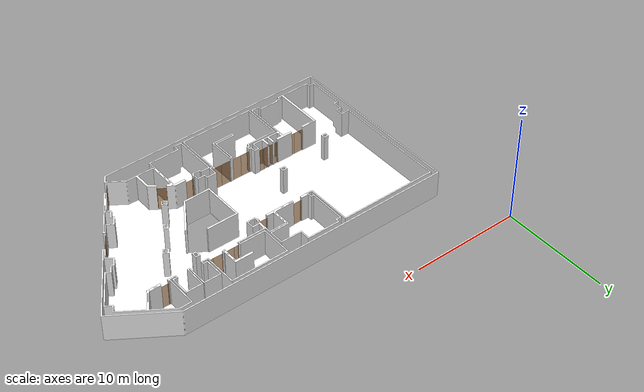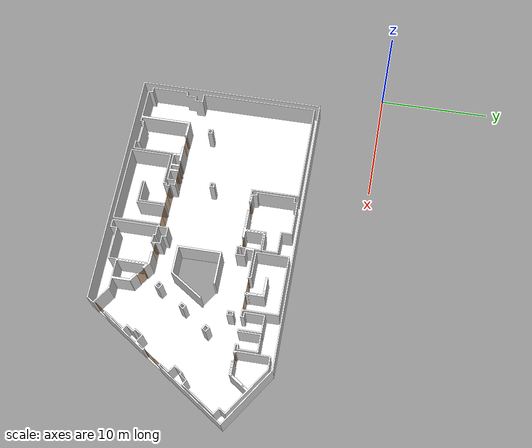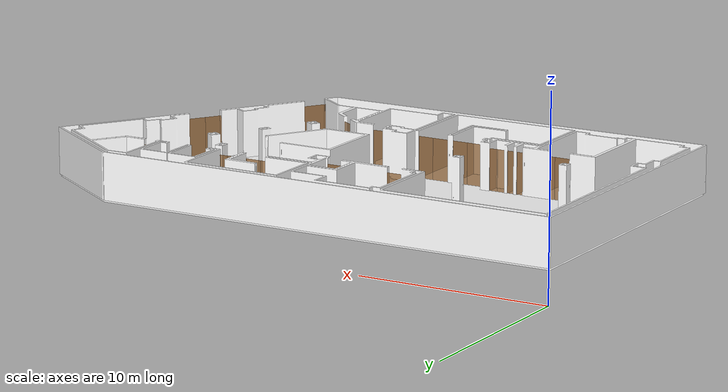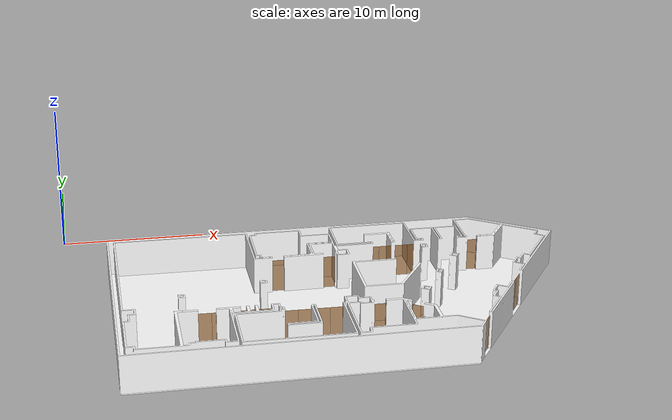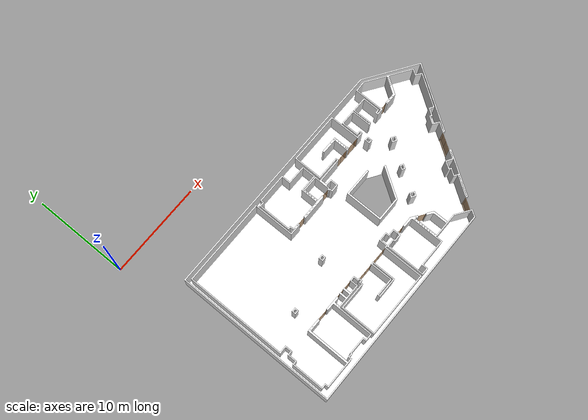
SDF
<sdf version="1.7">
 <world name="far world">
  <scene><ambient>0.8 0.8 0.8 1.0</ambient><background>0 0 0</background><grid>false</grid></scene>
  <light type="directional" name="sun">
   <pose>0 0 10 0 0 0</pose>
   <diffuse>1 1 1 1</diffuse>
   <specular>0.2 0.2 0.2 1</specular>
   <attenuation>
    <range>1000</range>
    <constant>0.09</constant>
    <linear>0.001</linear>
    <quadratic>0.001</quadratic>
   </attenuation>
   <direction>-0.5 0.1 -0.9</direction>
  </light>
  <model name="door19">
   <pose>20.932801891770737 -9.155233119319568 0.0 0 0 -3.1245482724006335</pose>
   <link name="right">
    <pose>0 0 1.11 0 0 0</pose>
    <visual name="right_visual">
     <geometry><box><size>0.46499708557900854 0.03 2.2</size></box></geometry>
     <material><ambient>0.5 0.25 0 0.6</ambient><diffuse>0.5 0.25 0 0.6</diffuse></material>
    </visual>
    <collision name="right_collision">
     <geometry><box><size>0.46499708557900854 0.03 2.2</size></box></geometry>
     <surface><contact><collide_bitmask>0x02</collide_bitmask></contact></surface>
    </collision>
    <inertial>
     <mass>50.0</mass>
     <inertia><ixx>20.17041666666667</ixx><iyy>21.06759287332072</iyy><izz>0.9046762066540492</izz></inertia>
    </inertial>
   </link>
   <joint name="right_joint" type="revolute">
    <parent>world</parent>
    <child>right</child>
    <axis><xyz>0 0 -1</xyz><limit><lower>0</lower><upper>1.57</upper></limit></axis>
    <pose>0.23749854278950427 0 0 0 0 0</pose>
   </joint>
   <plugin name="door" filename="libdoor.so">
    <v_max_door>0.5</v_max_door>
    <a_max_door>0.3</a_max_door>
    <a_nom_door>0.15</a_nom_door>
    <dx_min_door>0.01</dx_min_door>
    <f_max_door>500.0</f_max_door>
    <door name="door19" type="SwingDoor" left_joint_name="empty_joint" right_joint_name="right_joint"/>
   </plugin>
  </model>
  <model name="door18">
   <pose>21.618608721138727 -9.154002485610715 0.0 0 0 -0.0062834710775026064</pose>
   <link name="right">
    <pose>0 0 1.11 0 0 0</pose>
    <visual name="right_visual">
     <geometry><box><size>0.8867032691741502 0.03 2.2</size></box></geometry>
     <material><ambient>0.5 0.25 0 0.6</ambient><diffuse>0.5 0.25 0 0.6</diffuse></material>
    </visual>
    <collision name="right_collision">
     <geometry><box><size>0.8867032691741502 0.03 2.2</size></box></geometry>
     <surface><contact><collide_bitmask>0x02</collide_bitmask></contact></surface>
    </collision>
    <inertial>
     <mass>50.0</mass>
     <inertia><ixx>20.17041666666667</ixx><iyy>23.442677864850527</iyy><izz>3.2797611981838566</izz></inertia>
    </inertial>
   </link>
   <joint name="right_joint" type="revolute">
    <parent>world</parent>
    <child>right</child>
    <axis><xyz>0 0 1</xyz><limit><lower>0</lower><upper>1.57</upper></limit></axis>
    <pose>0.4483516345870751 0 0 0 0 0</pose>
   </joint>
   <plugin name="door" filename="libdoor.so">
    <v_max_door>0.5</v_max_door>
    <a_max_door>0.3</a_max_door>
    <a_nom_door>0.15</a_nom_door>
    <dx_min_door>0.01</dx_min_door>
    <f_max_door>500.0</f_max_door>
    <door name="door18" type="SwingDoor" left_joint_name="empty_joint" right_joint_name="right_joint"/>
   </plugin>
  </model>
  <model name="door17">
   <pose>22.690189055641554 -9.155715720774019 0.0 0 0 3.130041732852065</pose>
   <link name="right">
    <pose>0 0 1.11 0 0 0</pose>
    <visual name="right_visual">
     <geometry><box><size>0.9164997549340481 0.03 2.2</size></box></geometry>
     <material><ambient>0.5 0.25 0 0.6</ambient><diffuse>0.5 0.25 0 0.6</diffuse></material>
    </visual>
    <collision name="right_collision">
     <geometry><box><size>0.9164997549340481 0.03 2.2</size></box></geometry>
     <surface><contact><collide_bitmask>0x02</collide_bitmask></contact></surface>
    </collision>
    <inertial>
     <mass>50.0</mass>
     <inertia><ixx>20.17041666666667</ixx><iyy>23.666549169975713</iyy><izz>3.503632503309043</izz></inertia>
    </inertial>
   </link>
   <joint name="right_joint" type="revolute">
    <parent>world</parent>
    <child>right</child>
    <axis><xyz>0 0 -1</xyz><limit><lower>0</lower><upper>1.57</upper></limit></axis>
    <pose>0.46324987746702406 0 0 0 0 0</pose>
   </joint>
   <plugin name="door" filename="libdoor.so">
    <v_max_door>0.5</v_max_door>
    <a_max_door>0.3</a_max_door>
    <a_nom_door>0.15</a_nom_door>
    <dx_min_door>0.01</dx_min_door>
    <f_max_door>500.0</f_max_door>
    <door name="door17" type="SwingDoor" left_joint_name="empty_joint" right_joint_name="right_joint"/>
   </plugin>
  </model>
  <model name="door16">
   <pose>23.39084794477033 -9.159540337300557 0.0 0 0 0.006427757003794306</pose>
   <link name="right">
    <pose>0 0 1.11 0 0 0</pose>
    <visual name="right_visual">
     <geometry><box><size>0.46488964143202877 0.03 2.2</size></box></geometry>
     <material><ambient>0.5 0.25 0 0.6</ambient><diffuse>0.5 0.25 0 0.6</diffuse></material>
    </visual>
    <collision name="right_collision">
     <geometry><box><size>0.46488964143202877 0.03 2.2</size></box></geometry>
     <surface><contact><collide_bitmask>0x02</collide_bitmask></contact></surface>
    </collision>
    <inertial>
     <mass>50.0</mass>
     <inertia><ixx>20.17041666666667</ixx><iyy>21.06717657796167</iyy><izz>0.9042599112950013</izz></inertia>
    </inertial>
   </link>
   <joint name="right_joint" type="revolute">
    <parent>world</parent>
    <child>right</child>
    <axis><xyz>0 0 1</xyz><limit><lower>0</lower><upper>1.57</upper></limit></axis>
    <pose>0.2374448207160144 0 0 0 0 0</pose>
   </joint>
   <plugin name="door" filename="libdoor.so">
    <v_max_door>0.5</v_max_door>
    <a_max_door>0.3</a_max_door>
    <a_nom_door>0.15</a_nom_door>
    <dx_min_door>0.01</dx_min_door>
    <f_max_door>500.0</f_max_door>
    <door name="door16" type="SwingDoor" left_joint_name="empty_joint" right_joint_name="right_joint"/>
   </plugin>
  </model>
  <model name="door15">
   <pose>27.7209050395914 -9.049362425249036 0.0 0 0 -3.140259443640457</pose>
   <link name="right">
    <pose>0 0 1.11 0 0 0</pose>
    <visual name="right_visual">
     <geometry><box><size>0.7773167125013694 0.03 2.2</size></box></geometry>
     <material><ambient>0.5 0.25 0 0.6</ambient><diffuse>0.5 0.25 0 0.6</diffuse></material>
    </visual>
    <collision name="right_collision">
     <geometry><box><size>0.7773167125013694 0.03 2.2</size></box></geometry>
     <surface><contact><collide_bitmask>0x02</collide_bitmask></contact></surface>
    </collision>
    <inertial>
     <mass>50.0</mass>
     <inertia><ixx>20.17041666666667</ixx><iyy>22.684255298058073</iyy><izz>2.521338631391402</izz></inertia>
    </inertial>
   </link>
   <joint name="right_joint" type="revolute">
    <parent>world</parent>
    <child>right</child>
    <axis><xyz>0 0 1</xyz><limit><lower>0</lower><upper>1.57</upper></limit></axis>
    <pose>0.3936583562506847 0 0 0 0 0</pose>
   </joint>
   <plugin name="door" filename="libdoor.so">
    <v_max_door>0.5</v_max_door>
    <a_max_door>0.3</a_max_door>
    <a_nom_door>0.15</a_nom_door>
    <dx_min_door>0.01</dx_min_door>
    <f_max_door>500.0</f_max_door>
    <door name="door15" type="SwingDoor" left_joint_name="empty_joint" right_joint_name="right_joint"/>
   </plugin>
  </model>
  <model name="door21">
   <pose>14.051677313604344 -10.246708698782202 0.0 0 0 -3.138375814262721</pose>
   <link name="right">
    <pose>0 0 1.11 0 0 0</pose>
    <visual name="right_visual">
     <geometry><box><size>0.8938930708806093 0.03 2.2</size></box></geometry>
     <material><ambient>0.5 0.25 0 0.6</ambient><diffuse>0.5 0.25 0 0.6</diffuse></material>
    </visual>
    <collision name="right_collision">
     <geometry><box><size>0.8938930708806093 0.03 2.2</size></box></geometry>
     <surface><contact><collide_bitmask>0x02</collide_bitmask></contact></surface>
    </collision>
    <inertial>
     <mass>50.0</mass>
     <inertia><ixx>20.17041666666667</ixx><iyy>23.496020092368195</iyy><izz>3.3331034257015255</izz></inertia>
    </inertial>
   </link>
   <joint name="right_joint" type="revolute">
    <parent>world</parent>
    <child>right</child>
    <axis><xyz>0 0 -1</xyz><limit><lower>0</lower><upper>1.57</upper></limit></axis>
    <pose>0.45194653544030466 0 0 0 0 0</pose>
   </joint>
   <plugin name="door" filename="libdoor.so">
    <v_max_door>0.5</v_max_door>
    <a_max_door>0.3</a_max_door>
    <a_nom_door>0.15</a_nom_door>
    <dx_min_door>0.01</dx_min_door>
    <f_max_door>500.0</f_max_door>
    <door name="door21" type="SwingDoor" left_joint_name="empty_joint" right_joint_name="right_joint"/>
   </plugin>
  </model>
  <model name="door20">
   <pose>17.503755679894414 -10.24961637254528 0.0 0 0 -0.0071676974363008425</pose>
   <link name="right">
    <pose>0 0 1.11 0 0 0</pose>
    <visual name="right_visual">
     <geometry><box><size>0.8703479923357446 0.03 2.2</size></box></geometry>
     <material><ambient>0.5 0.25 0 0.6</ambient><diffuse>0.5 0.25 0 0.6</diffuse></material>
    </visual>
    <collision name="right_collision">
     <geometry><box><size>0.8703479923357446 0.03 2.2</size></box></geometry>
     <surface><contact><collide_bitmask>0x02</collide_bitmask></contact></surface>
    </collision>
    <inertial>
     <mass>50.0</mass>
     <inertia><ixx>20.17041666666667</ixx><iyy>23.322940115678595</iyy><izz>3.160023449011922</izz></inertia>
    </inertial>
   </link>
   <joint name="right_joint" type="revolute">
    <parent>world</parent>
    <child>right</child>
    <axis><xyz>0 0 1</xyz><limit><lower>0</lower><upper>1.57</upper></limit></axis>
    <pose>0.4401739961678723 0 0 0 0 0</pose>
   </joint>
   <plugin name="door" filename="libdoor.so">
    <v_max_door>0.5</v_max_door>
    <a_max_door>0.3</a_max_door>
    <a_nom_door>0.15</a_nom_door>
    <dx_min_door>0.01</dx_min_door>
    <f_max_door>500.0</f_max_door>
    <door name="door20" type="SwingDoor" left_joint_name="empty_joint" right_joint_name="right_joint"/>
   </plugin>
  </model>
  <model name="door1">
   <pose>8.395250446402217 -17.30021851647905 0.0 0 0 3.131674266524089</pose>
   <link name="right">
    <pose>0 0 1.11 0 0 0</pose>
    <visual name="right_visual">
     <geometry><box><size>0.886524558963248 0.03 2.2</size></box></geometry>
     <material><ambient>0.5 0.25 0 0.6</ambient><diffuse>0.5 0.25 0 0.6</diffuse></material>
    </visual>
    <collision name="right_collision">
     <geometry><box><size>0.886524558963248 0.03 2.2</size></box></geometry>
     <surface><contact><collide_bitmask>0x02</collide_bitmask></contact></surface>
    </collision>
    <inertial>
     <mass>50.0</mass>
     <inertia><ixx>20.17041666666667</ixx><iyy>23.44135747352076</iyy><izz>3.2784408068540896</izz></inertia>
    </inertial>
   </link>
   <joint name="right_joint" type="revolute">
    <parent>world</parent>
    <child>right</child>
    <axis><xyz>0 0 1</xyz><limit><lower>0</lower><upper>1.57</upper></limit></axis>
    <pose>0.448262279481624 0 0 0 0 0</pose>
   </joint>
   <plugin name="door" filename="libdoor.so">
    <v_max_door>0.5</v_max_door>
    <a_max_door>0.3</a_max_door>
    <a_nom_door>0.15</a_nom_door>
    <dx_min_door>0.01</dx_min_door>
    <f_max_door>500.0</f_max_door>
    <door name="door1" type="SwingDoor" left_joint_name="empty_joint" right_joint_name="right_joint"/>
   </plugin>
  </model>
  <model name="door2">
   <pose>9.0104526829838 -17.304085360632847 0.0 0 0 0.0034685701126792915</pose>
   <link name="right">
    <pose>0 0 1.11 0 0 0</pose>
    <visual name="right_visual">
     <geometry><box><size>0.32392602009848015 0.03 2.2</size></box></geometry>
     <material><ambient>0.5 0.25 0 0.6</ambient><diffuse>0.5 0.25 0 0.6</diffuse></material>
    </visual>
    <collision name="right_collision">
     <geometry><box><size>0.32392602009848015 0.03 2.2</size></box></geometry>
     <surface><contact><collide_bitmask>0x02</collide_bitmask></contact></surface>
    </collision>
    <inertial>
     <mass>50.0</mass>
     <inertia><ixx>20.17041666666667</ixx><iyy>20.603866943736843</iyy><izz>0.44095027707017076</izz></inertia>
    </inertial>
   </link>
   <joint name="right_joint" type="revolute">
    <parent>world</parent>
    <child>right</child>
    <axis><xyz>0 0 -1</xyz><limit><lower>0</lower><upper>1.57</upper></limit></axis>
    <pose>0.16696301004924008 0 0 0 0 0</pose>
   </joint>
   <plugin name="door" filename="libdoor.so">
    <v_max_door>0.5</v_max_door>
    <a_max_door>0.3</a_max_door>
    <a_nom_door>0.15</a_nom_door>
    <dx_min_door>0.01</dx_min_door>
    <f_max_door>500.0</f_max_door>
    <door name="door2" type="SwingDoor" left_joint_name="empty_joint" right_joint_name="right_joint"/>
   </plugin>
  </model>
  <model name="door3">
   <pose>10.821076819798916 -17.299747980060957 0.0 0 0 -3.131074088585187</pose>
   <link name="right">
    <pose>0 0 1.11 0 0 0</pose>
    <visual name="right_visual">
     <geometry><box><size>0.43849427710809474 0.03 2.2</size></box></geometry>
     <material><ambient>0.5 0.25 0 0.6</ambient><diffuse>0.5 0.25 0 0.6</diffuse></material>
    </visual>
    <collision name="right_collision">
     <geometry><box><size>0.43849427710809474 0.03 2.2</size></box></geometry>
     <surface><contact><collide_bitmask>0x02</collide_bitmask></contact></surface>
    </collision>
    <inertial>
     <mass>50.0</mass>
     <inertia><ixx>20.17041666666667</ixx><iyy>20.967821796068964</iyy><izz>0.8049051294022942</izz></inertia>
    </inertial>
   </link>
   <joint name="right_joint" type="revolute">
    <parent>world</parent>
    <child>right</child>
    <axis><xyz>0 0 1</xyz><limit><lower>0</lower><upper>1.57</upper></limit></axis>
    <pose>0.22424713855404738 0 0 0 0 0</pose>
   </joint>
   <plugin name="door" filename="libdoor.so">
    <v_max_door>0.5</v_max_door>
    <a_max_door>0.3</a_max_door>
    <a_nom_door>0.15</a_nom_door>
    <dx_min_door>0.01</dx_min_door>
    <f_max_door>500.0</f_max_door>
    <door name="door3" type="SwingDoor" left_joint_name="empty_joint" right_joint_name="right_joint"/>
   </plugin>
  </model>
  <model name="door4">
   <pose>11.352710582023857 -17.296761883561533 0.0 0 0 -3.13152471154416</pose>
   <link name="right">
    <pose>0 0 1.11 0 0 0</pose>
    <visual name="right_visual">
     <geometry><box><size>0.44059161948250103 0.03 2.2</size></box></geometry>
     <material><ambient>0.5 0.25 0 0.6</ambient><diffuse>0.5 0.25 0 0.6</diffuse></material>
    </visual>
    <collision name="right_collision">
     <geometry><box><size>0.44059161948250103 0.03 2.2</size></box></geometry>
     <surface><contact><collide_bitmask>0x02</collide_bitmask></contact></surface>
    </collision>
    <inertial>
     <mass>50.0</mass>
     <inertia><ixx>20.17041666666667</ixx><iyy>20.975504063159224</iyy><izz>0.8125873964925542</izz></inertia>
    </inertial>
   </link>
   <joint name="right_joint" type="revolute">
    <parent>world</parent>
    <child>right</child>
    <axis><xyz>0 0 1</xyz><limit><lower>0</lower><upper>1.57</upper></limit></axis>
    <pose>0.22529580974125052 0 0 0 0 0</pose>
   </joint>
   <plugin name="door" filename="libdoor.so">
    <v_max_door>0.5</v_max_door>
    <a_max_door>0.3</a_max_door>
    <a_nom_door>0.15</a_nom_door>
    <dx_min_door>0.01</dx_min_door>
    <f_max_door>500.0</f_max_door>
    <door name="door4" type="SwingDoor" left_joint_name="empty_joint" right_joint_name="right_joint"/>
   </plugin>
  </model>
  <model name="door5">
   <pose>11.88296289758543 -17.29548298970723 0.0 0 0 -3.1259072527138523</pose>
   <link name="right">
    <pose>0 0 1.11 0 0 0</pose>
    <visual name="right_visual">
     <geometry><box><size>0.4484553876577467 0.03 2.2</size></box></geometry>
     <material><ambient>0.5 0.25 0 0.6</ambient><diffuse>0.5 0.25 0 0.6</diffuse></material>
    </visual>
    <collision name="right_collision">
     <geometry><box><size>0.4484553876577467 0.03 2.2</size></box></geometry>
     <surface><contact><collide_bitmask>0x02</collide_bitmask></contact></surface>
    </collision>
    <inertial>
     <mass>50.0</mass>
     <inertia><ixx>20.17041666666667</ixx><iyy>21.004634311330257</iyy><izz>0.8417176446635828</izz></inertia>
    </inertial>
   </link>
   <joint name="right_joint" type="revolute">
    <parent>world</parent>
    <child>right</child>
    <axis><xyz>0 0 1</xyz><limit><lower>0</lower><upper>1.57</upper></limit></axis>
    <pose>0.22922769382887334 0 0 0 0 0</pose>
   </joint>
   <plugin name="door" filename="libdoor.so">
    <v_max_door>0.5</v_max_door>
    <a_max_door>0.3</a_max_door>
    <a_nom_door>0.15</a_nom_door>
    <dx_min_door>0.01</dx_min_door>
    <f_max_door>500.0</f_max_door>
    <door name="door5" type="SwingDoor" left_joint_name="empty_joint" right_joint_name="right_joint"/>
   </plugin>
  </model>
  <model name="door6">
   <pose>12.356636225130616 -17.28811125249047 0.0 0 0 0.015445645216112249</pose>
   <link name="right">
    <pose>0 0 1.11 0 0 0</pose>
    <visual name="right_visual">
     <geometry><box><size>0.47900599299911795 0.03 2.2</size></box></geometry>
     <material><ambient>0.5 0.25 0 0.6</ambient><diffuse>0.5 0.25 0 0.6</diffuse></material>
    </visual>
    <collision name="right_collision">
     <geometry><box><size>0.47900599299911795 0.03 2.2</size></box></geometry>
     <surface><contact><collide_bitmask>0x02</collide_bitmask></contact></surface>
    </collision>
    <inertial>
     <mass>50.0</mass>
     <inertia><ixx>20.17041666666667</ixx><iyy>21.1226947555378</iyy><izz>0.9597780888711294</izz></inertia>
    </inertial>
   </link>
   <joint name="right_joint" type="revolute">
    <parent>world</parent>
    <child>right</child>
    <axis><xyz>0 0 -1</xyz><limit><lower>0</lower><upper>1.57</upper></limit></axis>
    <pose>0.24450299649955898 0 0 0 0 0</pose>
   </joint>
   <plugin name="door" filename="libdoor.so">
    <v_max_door>0.5</v_max_door>
    <a_max_door>0.3</a_max_door>
    <a_nom_door>0.15</a_nom_door>
    <dx_min_door>0.01</dx_min_door>
    <f_max_door>500.0</f_max_door>
    <door name="door6" type="SwingDoor" left_joint_name="empty_joint" right_joint_name="right_joint"/>
   </plugin>
  </model>
  <model name="door7">
   <pose>13.681395315157438 -17.769638918706875 0.0 0 0 3.132291696088527</pose>
   <link name="right">
    <pose>0 0 1.11 0 0 0</pose>
    <visual name="right_visual">
     <geometry><box><size>0.9084182276754565 0.03 2.2</size></box></geometry>
     <material><ambient>0.5 0.25 0 0.6</ambient><diffuse>0.5 0.25 0 0.6</diffuse></material>
    </visual>
    <collision name="right_collision">
     <geometry><box><size>0.9084182276754565 0.03 2.2</size></box></geometry>
     <surface><contact><collide_bitmask>0x02</collide_bitmask></contact></surface>
    </collision>
    <inertial>
     <mass>50.0</mass>
     <inertia><ixx>20.17041666666667</ixx><iyy>23.605098651554243</iyy><izz>3.442181984887574</izz></inertia>
    </inertial>
   </link>
   <joint name="right_joint" type="revolute">
    <parent>world</parent>
    <child>right</child>
    <axis><xyz>0 0 1</xyz><limit><lower>0</lower><upper>1.57</upper></limit></axis>
    <pose>0.4592091138377283 0 0 0 0 0</pose>
   </joint>
   <plugin name="door" filename="libdoor.so">
    <v_max_door>0.5</v_max_door>
    <a_max_door>0.3</a_max_door>
    <a_nom_door>0.15</a_nom_door>
    <dx_min_door>0.01</dx_min_door>
    <f_max_door>500.0</f_max_door>
    <door name="door7" type="SwingDoor" left_joint_name="empty_joint" right_joint_name="right_joint"/>
   </plugin>
  </model>
  <model name="door8">
   <pose>14.574636314685502 -17.77692620066911 0.0 0 0 -0.006948965309571214</pose>
   <link name="right">
    <pose>0 0 1.11 0 0 0</pose>
    <visual name="right_visual">
     <geometry><box><size>0.8581244562333918 0.03 2.2</size></box></geometry>
     <material><ambient>0.5 0.25 0 0.6</ambient><diffuse>0.5 0.25 0 0.6</diffuse></material>
    </visual>
    <collision name="right_collision">
     <geometry><box><size>0.8581244562333918 0.03 2.2</size></box></geometry>
     <surface><contact><collide_bitmask>0x02</collide_bitmask></contact></surface>
    </collision>
    <inertial>
     <mass>50.0</mass>
     <inertia><ixx>20.17041666666667</ixx><iyy>23.2349065932744</iyy><izz>3.071989926607727</izz></inertia>
    </inertial>
   </link>
   <joint name="right_joint" type="revolute">
    <parent>world</parent>
    <child>right</child>
    <axis><xyz>0 0 -1</xyz><limit><lower>0</lower><upper>1.57</upper></limit></axis>
    <pose>0.4340622281166959 0 0 0 0 0</pose>
   </joint>
   <plugin name="door" filename="libdoor.so">
    <v_max_door>0.5</v_max_door>
    <a_max_door>0.3</a_max_door>
    <a_nom_door>0.15</a_nom_door>
    <dx_min_door>0.01</dx_min_door>
    <f_max_door>500.0</f_max_door>
    <door name="door8" type="SwingDoor" left_joint_name="empty_joint" right_joint_name="right_joint"/>
   </plugin>
  </model>
  <model name="door10">
   <pose>16.595469580023792 -17.77963480133222 0.0 0 0 -0.010516332937795546</pose>
   <link name="right">
    <pose>0 0 1.11 0 0 0</pose>
    <visual name="right_visual">
     <geometry><box><size>0.876853342177788 0.03 2.2</size></box></geometry>
     <material><ambient>0.5 0.25 0 0.6</ambient><diffuse>0.5 0.25 0 0.6</diffuse></material>
    </visual>
    <collision name="right_collision">
     <geometry><box><size>0.876853342177788 0.03 2.2</size></box></geometry>
     <surface><contact><collide_bitmask>0x02</collide_bitmask></contact></surface>
    </collision>
    <inertial>
     <mass>50.0</mass>
     <inertia><ixx>20.17041666666667</ixx><iyy>23.37029909870149</iyy><izz>3.2073824320348208</izz></inertia>
    </inertial>
   </link>
   <joint name="right_joint" type="revolute">
    <parent>world</parent>
    <child>right</child>
    <axis><xyz>0 0 -1</xyz><limit><lower>0</lower><upper>1.57</upper></limit></axis>
    <pose>0.443426671088894 0 0 0 0 0</pose>
   </joint>
   <plugin name="door" filename="libdoor.so">
    <v_max_door>0.5</v_max_door>
    <a_max_door>0.3</a_max_door>
    <a_nom_door>0.15</a_nom_door>
    <dx_min_door>0.01</dx_min_door>
    <f_max_door>500.0</f_max_door>
    <door name="door10" type="SwingDoor" left_joint_name="empty_joint" right_joint_name="right_joint"/>
   </plugin>
  </model>
  <model name="door9">
   <pose>15.679576474727362 -17.774519225915025 0.0 0 0 3.1406350929815936</pose>
   <link name="right">
    <pose>0 0 1.11 0 0 0</pose>
    <visual name="right_visual">
     <geometry><box><size>0.934982341201227 0.03 2.2</size></box></geometry>
     <material><ambient>0.5 0.25 0 0.6</ambient><diffuse>0.5 0.25 0 0.6</diffuse></material>
    </visual>
    <collision name="right_collision">
     <geometry><box><size>0.934982341201227 0.03 2.2</size></box></geometry>
     <surface><contact><collide_bitmask>0x02</collide_bitmask></contact></surface>
    </collision>
    <inertial>
     <mass>50.0</mass>
     <inertia><ixx>20.17041666666667</ixx><iyy>23.80913324315887</iyy><izz>3.6462165764921988</izz></inertia>
    </inertial>
   </link>
   <joint name="right_joint" type="revolute">
    <parent>world</parent>
    <child>right</child>
    <axis><xyz>0 0 1</xyz><limit><lower>0</lower><upper>1.57</upper></limit></axis>
    <pose>0.4724911706006135 0 0 0 0 0</pose>
   </joint>
   <plugin name="door" filename="libdoor.so">
    <v_max_door>0.5</v_max_door>
    <a_max_door>0.3</a_max_door>
    <a_nom_door>0.15</a_nom_door>
    <dx_min_door>0.01</dx_min_door>
    <f_max_door>500.0</f_max_door>
    <door name="door9" type="SwingDoor" left_joint_name="empty_joint" right_joint_name="right_joint"/>
   </plugin>
  </model>
  <model name="door11">
   <pose>19.307442420801777 -17.780219955595747 0.0 0 0 3.1351085845375697</pose>
   <link name="right">
    <pose>0 0 1.11 0 0 0</pose>
    <visual name="right_visual">
     <geometry><box><size>0.8533800865255567 0.03 2.2</size></box></geometry>
     <material><ambient>0.5 0.25 0 0.6</ambient><diffuse>0.5 0.25 0 0.6</diffuse></material>
    </visual>
    <collision name="right_collision">
     <geometry><box><size>0.8533800865255567 0.03 2.2</size></box></geometry>
     <surface><contact><collide_bitmask>0x02</collide_bitmask></contact></surface>
    </collision>
    <inertial>
     <mass>50.0</mass>
     <inertia><ixx>20.17041666666667</ixx><iyy>23.2010732169932</iyy><izz>3.038156550326528</izz></inertia>
    </inertial>
   </link>
   <joint name="right_joint" type="revolute">
    <parent>world</parent>
    <child>right</child>
    <axis><xyz>0 0 1</xyz><limit><lower>0</lower><upper>1.57</upper></limit></axis>
    <pose>0.4316900432627784 0 0 0 0 0</pose>
   </joint>
   <plugin name="door" filename="libdoor.so">
    <v_max_door>0.5</v_max_door>
    <a_max_door>0.3</a_max_door>
    <a_nom_door>0.15</a_nom_door>
    <dx_min_door>0.01</dx_min_door>
    <f_max_door>500.0</f_max_door>
    <door name="door11" type="SwingDoor" left_joint_name="empty_joint" right_joint_name="right_joint"/>
   </plugin>
  </model>
  <model name="door12">
   <pose>21.622728931056116 -18.424492897289916 0.0 0 0 2.526133930645326</pose>
   <link name="right">
    <pose>0 0 1.11 0 0 0</pose>
    <visual name="right_visual">
     <geometry><box><size>0.8993083888212712 0.03 2.2</size></box></geometry>
     <material><ambient>0.5 0.25 0 0.6</ambient><diffuse>0.5 0.25 0 0.6</diffuse></material>
    </visual>
    <collision name="right_collision">
     <geometry><box><size>0.8993083888212712 0.03 2.2</size></box></geometry>
     <surface><contact><collide_bitmask>0x02</collide_bitmask></contact></surface>
    </collision>
    <inertial>
     <mass>50.0</mass>
     <inertia><ixx>20.17041666666667</ixx><iyy>23.5364815758513</iyy><izz>3.373564909184628</izz></inertia>
    </inertial>
   </link>
   <joint name="right_joint" type="revolute">
    <parent>world</parent>
    <child>right</child>
    <axis><xyz>0 0 1</xyz><limit><lower>0</lower><upper>1.57</upper></limit></axis>
    <pose>0.4546541944106356 0 0 0 0 0</pose>
   </joint>
   <plugin name="door" filename="libdoor.so">
    <v_max_door>0.5</v_max_door>
    <a_max_door>0.3</a_max_door>
    <a_nom_door>0.15</a_nom_door>
    <dx_min_door>0.01</dx_min_door>
    <f_max_door>500.0</f_max_door>
    <door name="door12" type="SwingDoor" left_joint_name="empty_joint" right_joint_name="right_joint"/>
   </plugin>
  </model>
  <model name="door13">
   <pose>25.226096820798887 -21.044433640703794 0.0 0 0 0.9832212829242735</pose>
   <link name="right">
    <pose>0 0 1.11 0 0 0</pose>
    <visual name="right_visual">
     <geometry><box><size>1.3361351941380681 0.03 2.2</size></box></geometry>
     <material><ambient>0.5 0.25 0 0.6</ambient><diffuse>0.5 0.25 0 0.6</diffuse></material>
    </visual>
    <collision name="right_collision">
     <geometry><box><size>1.3361351941380681 0.03 2.2</size></box></geometry>
     <surface><contact><collide_bitmask>0x02</collide_bitmask></contact></surface>
    </collision>
    <inertial>
     <mass>50.0</mass>
     <inertia><ixx>20.17041666666667</ixx><iyy>27.605238570893224</iyy><izz>7.442321904226554</izz></inertia>
    </inertial>
   </link>
   <joint name="right_joint" type="prismatic">
    <parent>world</parent>
    <child>right</child>
    <axis>
     <xyz>1 0 0</xyz>
     <limit><lower>0.0</lower><upper>1.3461351941380681</upper><effort>500.0</effort></limit>
    </axis>
   </joint>
   <plugin name="door" filename="libdoor.so">
    <v_max_door>0.2</v_max_door>
    <a_max_door>0.2</a_max_door>
    <a_nom_door>0.08</a_nom_door>
    <dx_min_door>0.001</dx_min_door>
    <f_max_door>100.0</f_max_door>
    <door name="door13" type="SlidingDoor" left_joint_name="empty_joint" right_joint_name="right_joint"/>
   </plugin>
  </model>
  <model name="door14">
   <pose>28.738397816086454 -15.746567589123558 0.0 0 0 -2.151821504589165</pose>
   <link name="right">
    <pose>0.48222234864899594 0 1.11 0 0 0</pose>
    <visual name="right_visual">
     <geometry><box><size>0.9544446972979919 0.03 2.2</size></box></geometry>
     <material><ambient>0.5 0.25 0 0.6</ambient><diffuse>0.5 0.25 0 0.6</diffuse></material>
    </visual>
    <collision name="right_collision">
     <geometry><box><size>0.9544446972979919 0.03 2.2</size></box></geometry>
     <surface><contact><collide_bitmask>0x02</collide_bitmask></contact></surface>
    </collision>
    <inertial>
     <mass>50.0</mass>
     <inertia><ixx>20.17041666666667</ixx><iyy>23.962352834167735</iyy><izz>3.799436167501064</izz></inertia>
    </inertial>
   </link>
   <joint name="right_joint" type="prismatic">
    <parent>world</parent>
    <child>right</child>
    <axis>
     <xyz>1 0 0</xyz>
     <limit><lower>0.0</lower><upper>0.9644446972979919</upper><effort>500.0</effort></limit>
    </axis>
   </joint>
   <link name="left">
    <pose>-0.48222234864899594 0 1.11 0 0 0</pose>
    <visual name="left_visual">
     <geometry><box><size>0.9544446972979919 0.03 2.2</size></box></geometry>
     <material><ambient>0.5 0.25 0 0.6</ambient><diffuse>0.5 0.25 0 0.6</diffuse></material>
    </visual>
    <collision name="left_collision">
     <geometry><box><size>0.9544446972979919 0.03 2.2</size></box></geometry>
     <surface><contact><collide_bitmask>0x02</collide_bitmask></contact></surface>
    </collision>
    <inertial>
     <mass>50.0</mass>
     <inertia><ixx>20.17041666666667</ixx><iyy>23.962352834167735</iyy><izz>3.799436167501064</izz></inertia>
    </inertial>
   </link>
   <joint name="left_joint" type="prismatic">
    <parent>world</parent>
    <child>left</child>
    <axis>
     <xyz>1 0 0</xyz>
     <limit><lower>-0.9644446972979919</lower><upper>0.0</upper><effort>500.0</effort></limit>
    </axis>
   </joint>
   <plugin name="door" filename="libdoor.so">
    <v_max_door>0.2</v_max_door>
    <a_max_door>0.2</a_max_door>
    <a_nom_door>0.08</a_nom_door>
    <dx_min_door>0.001</dx_min_door>
    <f_max_door>100.0</f_max_door>
    <door name="door14" type="DoubleSlidingDoor" left_joint_name="left_joint" right_joint_name="right_joint"/>
   </plugin>
  </model>
  <include><name>far_RDC</name><uri>model://far_RDC</uri></include>
  <rmf_charger_waypoints name="charger_waypoints">
   <rmf_vertex name="dock1" x="4.24373175965587" y="-10.10795474810891" level="RDC"/>
  </rmf_charger_waypoints>
 </world>
</sdf>

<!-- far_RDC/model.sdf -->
<sdf version="1.7">
  <model name="far_RDC">
    <static>true</static>
    <link name="floor_1">
      <visual name="visual">
        <geometry>
          <mesh>
            <uri>model://far_RDC/meshes/floor_1.obj</uri>
          </mesh>
        </geometry>
        <material>
          <diffuse>1.0 1.0 1.0</diffuse>
          <specular>0.1 0.1 0.1</specular>
          <pbr>
            <metal>
              <metalness>0.0</metalness>
              <albedo_map>model://far_RDC/meshes/blue_linoleum.png</albedo_map>
            </metal>
          </pbr>
          <script>
            <uri>model://far_RDC/meshes/</uri>
            <name>floor_1_Diffuse</name>
          </script>
        </material>
      </visual>
      <collision name="collision">
        <geometry>
          <mesh>
            <uri>model://far_RDC/meshes/floor_1.obj</uri>
          </mesh>
        </geometry>
        <surface>
          <contact>
            <collide_bitmask>0x01</collide_bitmask>
          </contact>
        </surface>
      </collision>
    </link>
    <link name="wall_1">
      <visual name="wall_1">
        <geometry>
          <mesh>
            <uri>model://far_RDC/meshes/wall_1.obj</uri>
          </mesh>
        </geometry>
        <transparency>0.0</transparency>
        <material>
          <diffuse>1.0 1.0 1.0</diffuse>
          <specular>0.1 0.1 0.1</specular>
          <pbr>
            <metal>
              <metalness>0.0</metalness>
              <albedo_map>model://far_RDC/meshes/default.png</albedo_map>
            </metal>
          </pbr>
          <script>
            <uri>model://far_RDC/meshes/</uri>
            <name>wall_1_Diffuse</name>
          </script>
        </material>
      </visual>
      <collision name="collision">
        <geometry>
          <mesh>
            <uri>model://far_RDC/meshes/wall_1.obj</uri>
          </mesh>
        </geometry>
        <surface>
          <contact>
            <collide_bitmask>0x01</collide_bitmask>
          </contact>
        </surface>
      </collision>
      <pose>2.9144658795685583 -22.462600120451665 0 0 0 0</pose>
    </link>
  </model>
</sdf>
